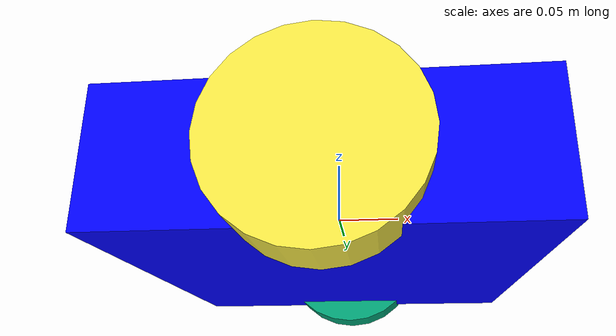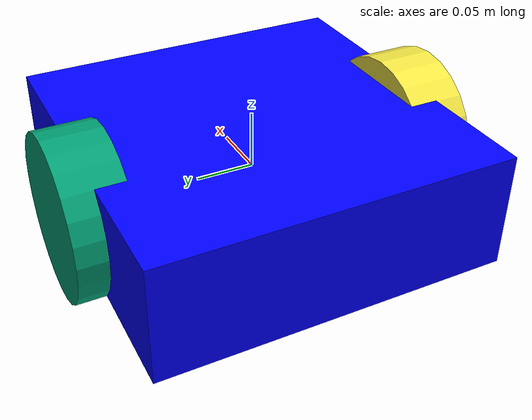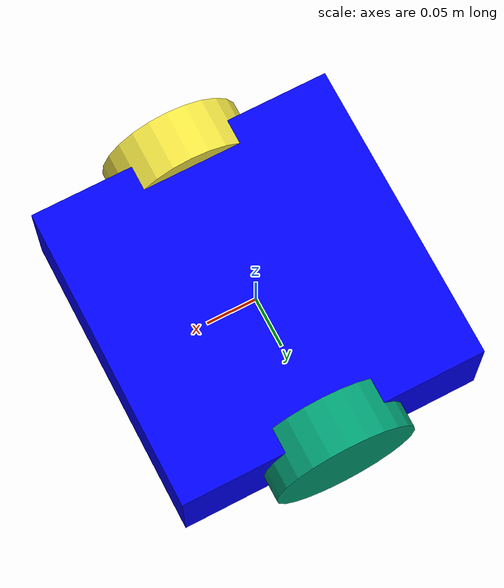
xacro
<?xml version="1.0"?>
<robot xmlns:xacro="http://www.ros.org/wiki/xacro" name="diffbot">
  <xacro:property name="wheel_radius" value="0.07"/>
  <xacro:property name="wheel_separation" value="0.30"/>
  <link name="base_footprint"/>

  <joint name="base_footprint_joint" type="fixed">
    <parent link="base_footprint"/>
    <child link="base_link"/>
    <origin xyz="0 0 0" rpy="0 0 0"/>
  </joint>

  <link name="base_link">
    <inertial>
      <mass value="1.0"/>
      <inertia ixx="0.1" iyy="0.1" izz="0.1" ixy="0" ixz="0" iyz="0"/>
    </inertial>
    <visual>
      <geometry><box size="0.3 0.3 0.1"/></geometry>
      <material name="blue"><color rgba="0 0 1 1"/></material>
    </visual>
    <collision><geometry><box size="0.3 0.3 0.1"/></geometry></collision>
  </link>

  <link name="left_wheel">
    <inertial>
      <mass value="0.2"/>
      <inertia ixx="0.001" iyy="0.001" izz="0.001" ixy="0" ixz="0" iyz="0"/>
    </inertial>
    <visual><geometry><cylinder length="0.05" radius="${wheel_radius}"/></geometry></visual>
    <collision><geometry><cylinder length="0.05" radius="${wheel_radius}"/></geometry></collision>
  </link>

  <link name="right_wheel">
    <inertial>
      <mass value="0.2"/>
      <inertia ixx="0.001" iyy="0.001" izz="0.001" ixy="0" ixz="0" iyz="0"/>
    </inertial>
    <visual><geometry><cylinder length="0.05" radius="${wheel_radius}"/></geometry></visual>
    <collision><geometry><cylinder length="0.05" radius="${wheel_radius}"/></geometry></collision>
  </link>

  <joint name="left_wheel_joint" type="continuous">
    <parent link="base_link"/>
    <child link="left_wheel"/>
    <origin xyz="0 0.15 0" rpy="1.5708 0 0"/>
    <axis xyz="0 1 0"/>
  </joint>

  <joint name="right_wheel_joint" type="continuous">
    <parent link="base_link"/>
    <child link="right_wheel"/>
    <origin xyz="0 -0.15 0" rpy="1.5708 0 0"/>
    <axis xyz="0 1 0"/>
  </joint>

  <gazebo>
    <plugin filename="gz_ros2_control-system" name="gz_ros2_control::GazeboSimROS2ControlPlugin">
      <robot_param>robot_description</robot_param>
      <robot_param_node>robot_state_publisher</robot_param_node>
    </plugin>
  </gazebo>

  <ros2_control name="DiffBotSystem" type="system">
    <hardware>
      <plugin>gazebo_ros2_control/DefaultRobotHWSim</plugin>
    </hardware>
    <joint name="left_wheel_joint">
      <command_interface>velocity</command_interface>
      <state_interface>position</state_interface>
      <state_interface>velocity</state_interface>
    </joint>
    <joint name="right_wheel_joint">
      <command_interface>velocity</command_interface>
      <state_interface>position</state_interface>
      <state_interface>velocity</state_interface>
    </joint>
  </ros2_control>
</robot>
